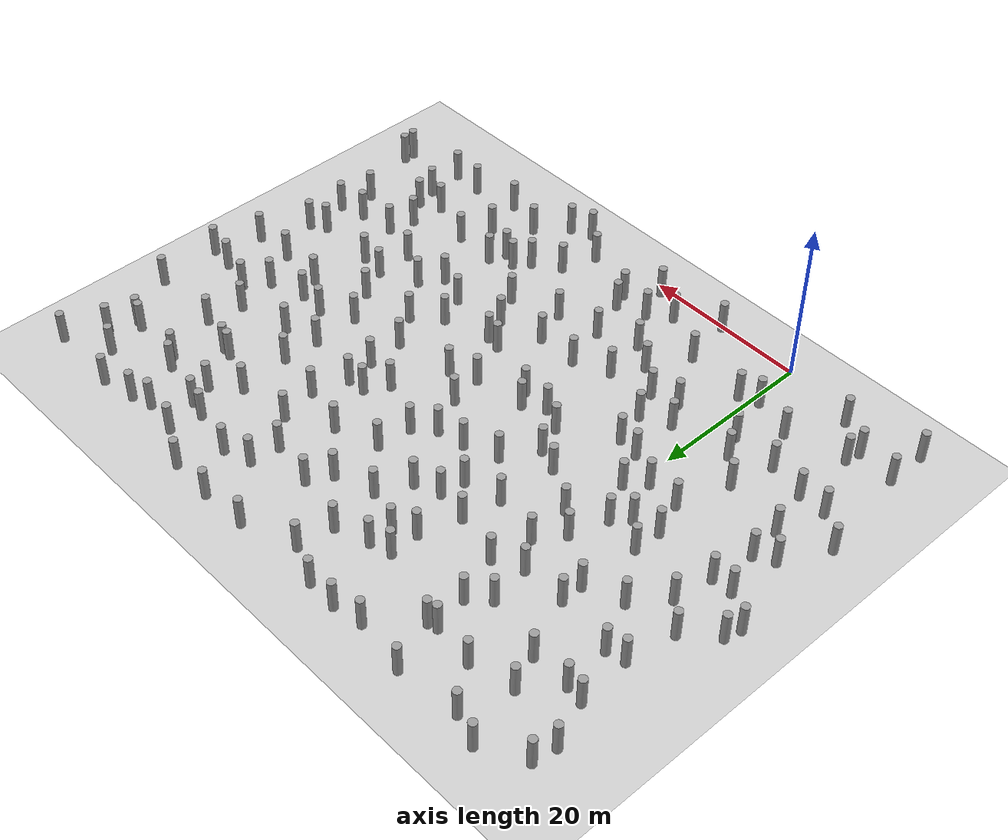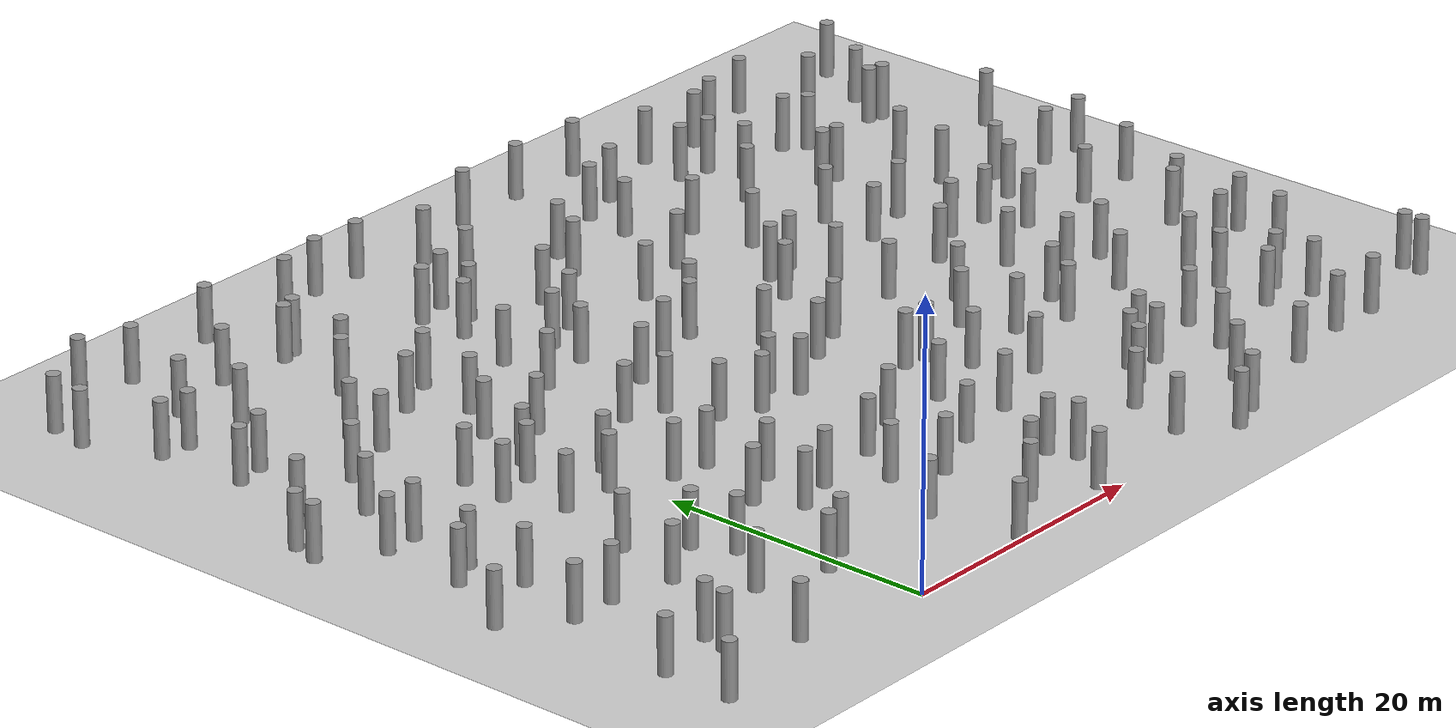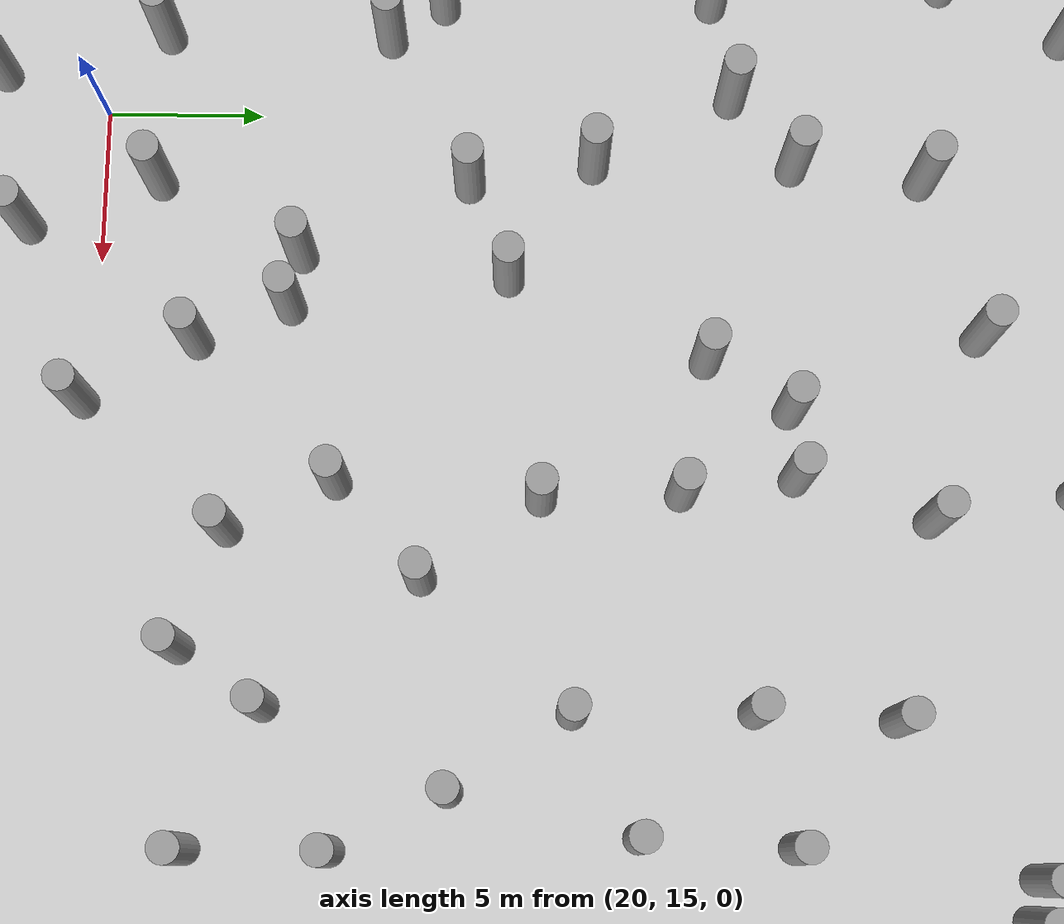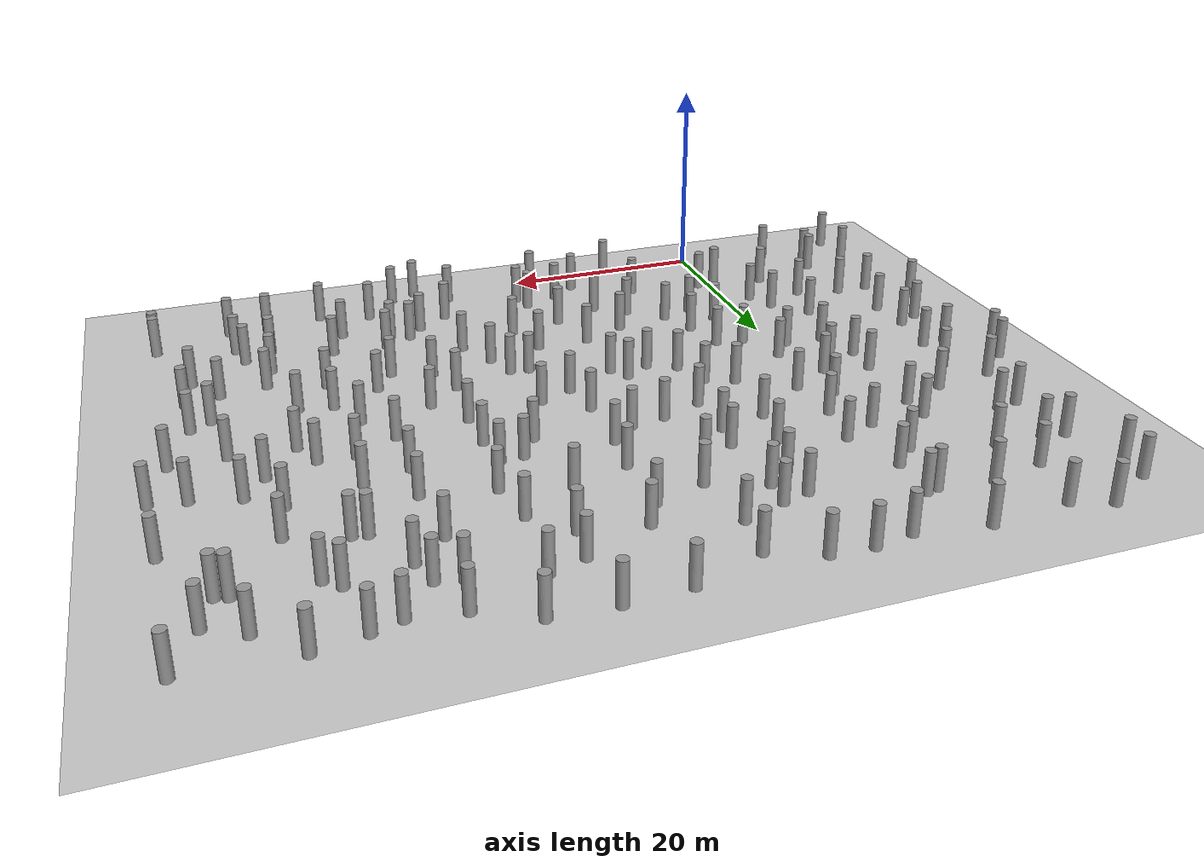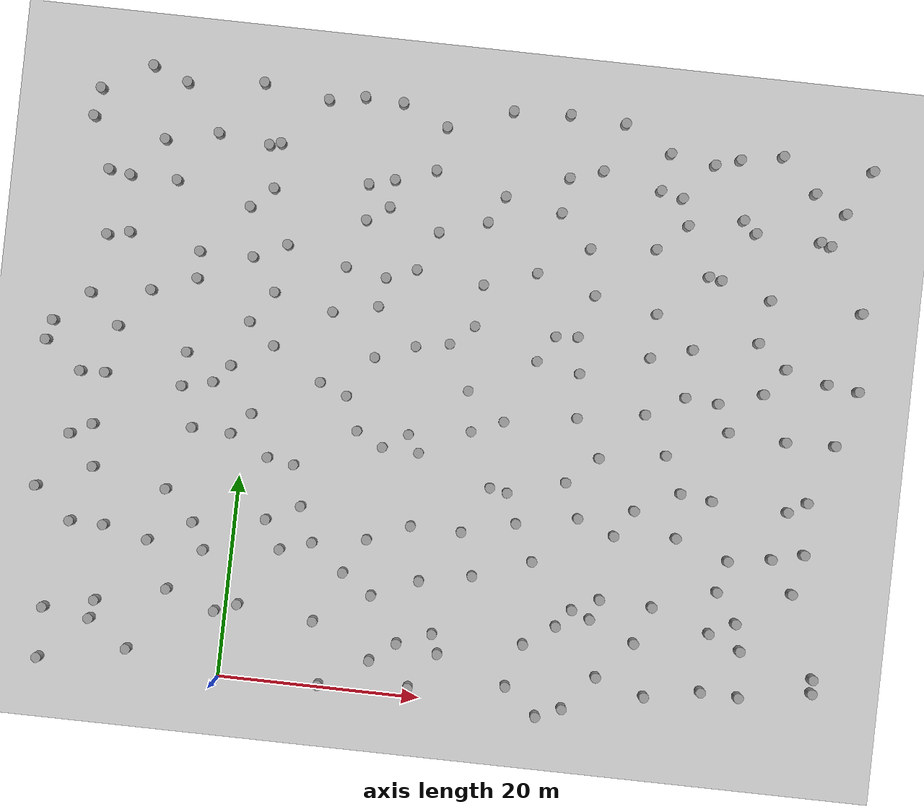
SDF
<sdf version="1.6">
 <world name="default">
  <model name="ground_plane">
   <static>1</static>
   <link name="link">
    <collision name="collision">
     <geometry><plane><normal>0 0 1</normal><size>200 200</size></plane></geometry>
     <surface><friction><ode><mu>100</mu><mu2>50</mu2></ode></friction></surface>
    </collision>
    <visual name="visual">
     <cast_shadows>0</cast_shadows>
     <geometry><plane><normal>0 0 1</normal><size>200 200</size></plane></geometry>
     <material>
      <script><uri>file://media/materials/scripts/gazebo.material</uri><name>Gazebo/Grey</name></script>
     </material>
    </visual>
   </link>
   <pose>0 100 0 0 0 0</pose>
  </model>
  <include>
   <name>tree_-20.3471959496_31.4327695298</name>
   <uri>model://tree</uri>
   <pose>-20.3471959496 31.4327695298 2 0 0 0</pose>
  </include>
  <include>
   <name>tree_-17.8876705549_0.151545028058</name>
   <uri>model://tree</uri>
   <pose>-17.8876705549 0.151545028058 2 0 0 0</pose>
  </include>
  <include>
   <name>tree_-17.8658767701_5.13942806395</name>
   <uri>model://tree</uri>
   <pose>-17.8658767701 5.13942806395 2 0 0 0</pose>
  </include>
  <include>
   <name>tree_-16.1157579756_13.8774870262</name>
   <uri>model://tree</uri>
   <pose>-16.1157579756 13.8774870262 2 0 0 0</pose>
  </include>
  <include>
   <name>tree_-19.8415970105_16.9950917067</name>
   <uri>model://tree</uri>
   <pose>-19.8415970105 16.9950917067 2 0 0 0</pose>
  </include>
  <include>
   <name>tree_-17.0396160009_22.4654612482</name>
   <uri>model://tree</uri>
   <pose>-17.0396160009 22.4654612482 2 0 0 0</pose>
  </include>
  <include>
   <name>tree_-16.644580941_28.7073676182</name>
   <uri>model://tree</uri>
   <pose>-16.644580941 28.7073676182 2 0 0 0</pose>
  </include>
  <include>
   <name>tree_-19.8629767471_33.4054026926</name>
   <uri>model://tree</uri>
   <pose>-19.8629767471 33.4054026926 2 0 0 0</pose>
  </include>
  <include>
   <name>tree_-16.4330911938_36.5138351451</name>
   <uri>model://tree</uri>
   <pose>-16.4330911938 36.5138351451 2 0 0 0</pose>
  </include>
  <include>
   <name>tree_-15.4296647312_42.3822699031</name>
   <uri>model://tree</uri>
   <pose>-15.4296647312 42.3822699031 2 0 0 0</pose>
  </include>
  <include>
   <name>tree_-15.9097445647_48.777591251</name>
   <uri>model://tree</uri>
   <pose>-15.9097445647 48.777591251 2 0 0 0</pose>
  </include>
  <include>
   <name>tree_-17.9476957016_53.8715595915</name>
   <uri>model://tree</uri>
   <pose>-17.9476957016 53.8715595915 2 0 0 0</pose>
  </include>
  <include>
   <name>tree_-17.5202593692_56.6717556606</name>
   <uri>model://tree</uri>
   <pose>-17.5202593692 56.6717556606 2 0 0 0</pose>
  </include>
  <include>
   <name>tree_-13.2073368421_4.51627342997</name>
   <uri>model://tree</uri>
   <pose>-13.2073368421 4.51627342997 2 0 0 0</pose>
  </include>
  <include>
   <name>tree_-12.8541885721_6.35245963202</name>
   <uri>model://tree</uri>
   <pose>-12.8541885721 6.35245963202 2 0 0 0</pose>
  </include>
  <include>
   <name>tree_-12.7759682866_13.8388029261</name>
   <uri>model://tree</uri>
   <pose>-12.7759682866 13.8388029261 2 0 0 0</pose>
  </include>
  <include>
   <name>tree_-14.4063748572_19.4316727285</name>
   <uri>model://tree</uri>
   <pose>-14.4063748572 19.4316727285 2 0 0 0</pose>
  </include>
  <include>
   <name>tree_-14.8747815988_23.6265828174</name>
   <uri>model://tree</uri>
   <pose>-14.8747815988 23.6265828174 2 0 0 0</pose>
  </include>
  <include>
   <name>tree_-14.1860299002_28.8031567093</name>
   <uri>model://tree</uri>
   <pose>-14.1860299002 28.8031567093 2 0 0 0</pose>
  </include>
  <include>
   <name>tree_-13.4098989439_33.5225265349</name>
   <uri>model://tree</uri>
   <pose>-13.4098989439 33.5225265349 2 0 0 0</pose>
  </include>
  <include>
   <name>tree_-10.5228278711_37.3740751108</name>
   <uri>model://tree</uri>
   <pose>-10.5228278711 37.3740751108 2 0 0 0</pose>
  </include>
  <include>
   <name>tree_-13.2317866527_42.8462266209</name>
   <uri>model://tree</uri>
   <pose>-13.2317866527 42.8462266209 2 0 0 0</pose>
  </include>
  <include>
   <name>tree_-13.7787666317_48.4605740414</name>
   <uri>model://tree</uri>
   <pose>-13.7787666317 48.4605740414 2 0 0 0</pose>
  </include>
  <include>
   <name>tree_-10.692437674_52.306377091</name>
   <uri>model://tree</uri>
   <pose>-10.692437674 52.306377091 2 0 0 0</pose>
  </include>
  <include>
   <name>tree_-12.6012917272_59.412078492</name>
   <uri>model://tree</uri>
   <pose>-12.6012917272 59.412078492 2 0 0 0</pose>
  </include>
  <include>
   <name>tree_-9.23712402127_1.91435965161</name>
   <uri>model://tree</uri>
   <pose>-9.23712402127 1.91435965161 2 0 0 0</pose>
  </include>
  <include>
   <name>tree_-5.90660464364_8.19810058255</name>
   <uri>model://tree</uri>
   <pose>-5.90660464364 8.19810058255 2 0 0 0</pose>
  </include>
  <include>
   <name>tree_-8.30884672884_12.8245825963</name>
   <uri>model://tree</uri>
   <pose>-8.30884672884 12.8245825963 2 0 0 0</pose>
  </include>
  <include>
   <name>tree_-7.02002113818_18.0017570577</name>
   <uri>model://tree</uri>
   <pose>-7.02002113818 18.0017570577 2 0 0 0</pose>
  </include>
  <include>
   <name>tree_-5.09516897834_24.2990620615</name>
   <uri>model://tree</uri>
   <pose>-5.09516897834 24.2990620615 2 0 0 0</pose>
  </include>
  <include>
   <name>tree_-6.53499131373_28.2836747178</name>
   <uri>model://tree</uri>
   <pose>-6.53499131373 28.2836747178 2 0 0 0</pose>
  </include>
  <include>
   <name>tree_-6.38214262196_31.6506247322</name>
   <uri>model://tree</uri>
   <pose>-6.38214262196 31.6506247322 2 0 0 0</pose>
  </include>
  <include>
   <name>tree_-6.12115060556_38.9901246406</name>
   <uri>model://tree</uri>
   <pose>-6.12115060556 38.9901246406 2 0 0 0</pose>
  </include>
  <include>
   <name>tree_-6.15139281868_41.6749913735</name>
   <uri>model://tree</uri>
   <pose>-6.15139281868 41.6749913735 2 0 0 0</pose>
  </include>
  <include>
   <name>tree_-9.11470946419_48.4210206559</name>
   <uri>model://tree</uri>
   <pose>-9.11470946419 48.4210206559 2 0 0 0</pose>
  </include>
  <include>
   <name>tree_-5.50173791698_53.4810601696</name>
   <uri>model://tree</uri>
   <pose>-5.50173791698 53.4810601696 2 0 0 0</pose>
  </include>
  <include>
   <name>tree_-9.10223343715_58.1286850846</name>
   <uri>model://tree</uri>
   <pose>-9.10223343715 58.1286850846 2 0 0 0</pose>
  </include>
  <include>
   <name>tree_-0.999761751167_6.53906919878</name>
   <uri>model://tree</uri>
   <pose>-0.999761751167 6.53906919878 2 0 0 0</pose>
  </include>
  <include>
   <name>tree_-2.73955871888_12.3877746234</name>
   <uri>model://tree</uri>
   <pose>-2.73955871888 12.3877746234 2 0 0 0</pose>
  </include>
  <include>
   <name>tree_-4.05473030635_15.0157839178</name>
   <uri>model://tree</uri>
   <pose>-4.05473030635 15.0157839178 2 0 0 0</pose>
  </include>
  <include>
   <name>tree_-1.24517608595_24.1268477064</name>
   <uri>model://tree</uri>
   <pose>-1.24517608595 24.1268477064 2 0 0 0</pose>
  </include>
  <include>
   <name>tree_-3.49705641482_28.9826916395</name>
   <uri>model://tree</uri>
   <pose>-3.49705641482 28.9826916395 2 0 0 0</pose>
  </include>
  <include>
   <name>tree_-1.91549454132_30.7970167888</name>
   <uri>model://tree</uri>
   <pose>-1.91549454132 30.7970167888 2 0 0 0</pose>
  </include>
  <include>
   <name>tree_-0.531272221028_35.2961618468</name>
   <uri>model://tree</uri>
   <pose>-0.531272221028 35.2961618468 2 0 0 0</pose>
  </include>
  <include>
   <name>tree_-0.877197033835_41.6762184001</name>
   <uri>model://tree</uri>
   <pose>-0.877197033835 41.6762184001 2 0 0 0</pose>
  </include>
  <include>
   <name>tree_-1.67726126651_46.5751806154</name>
   <uri>model://tree</uri>
   <pose>-1.67726126651 46.5751806154 2 0 0 0</pose>
  </include>
  <include>
   <name>tree_-0.435100624166_52.840366762</name>
   <uri>model://tree</uri>
   <pose>-0.435100624166 52.840366762 2 0 0 0</pose>
  </include>
  <include>
   <name>tree_-1.54385126471_58.8835263134</name>
   <uri>model://tree</uri>
   <pose>-1.54385126471 58.8835263134 2 0 0 0</pose>
  </include>
  <include>
   <name>tree_1.21419993826_7.43046508359</name>
   <uri>model://tree</uri>
   <pose>1.21419993826 7.43046508359 2 0 0 0</pose>
  </include>
  <include>
   <name>tree_4.78076918053_13.2502703965</name>
   <uri>model://tree</uri>
   <pose>4.78076918053 13.2502703965 2 0 0 0</pose>
  </include>
  <include>
   <name>tree_3.10394785133_16.0528170704</name>
   <uri>model://tree</uri>
   <pose>3.10394785133 16.0528170704 2 0 0 0</pose>
  </include>
  <include>
   <name>tree_2.6295578138_22.1548978713</name>
   <uri>model://tree</uri>
   <pose>2.6295578138 22.1548978713 2 0 0 0</pose>
  </include>
  <include>
   <name>tree_0.612915995992_26.2754635654</name>
   <uri>model://tree</uri>
   <pose>0.612915995992 26.2754635654 2 0 0 0</pose>
  </include>
  <include>
   <name>tree_2.09185081287_33.169004687</name>
   <uri>model://tree</uri>
   <pose>2.09185081287 33.169004687 2 0 0 0</pose>
  </include>
  <include>
   <name>tree_1.61507169177_38.4356333405</name>
   <uri>model://tree</uri>
   <pose>1.61507169177 38.4356333405 2 0 0 0</pose>
  </include>
  <include>
   <name>tree_2.41406867367_43.2321872583</name>
   <uri>model://tree</uri>
   <pose>2.41406867367 43.2321872583 2 0 0 0</pose>
  </include>
  <include>
   <name>tree_0.474805913514_48.62715839</name>
   <uri>model://tree</uri>
   <pose>0.474805913514 48.62715839 2 0 0 0</pose>
  </include>
  <include>
   <name>tree_0.702923395814_53.1377669234</name>
   <uri>model://tree</uri>
   <pose>0.702923395814 53.1377669234 2 0 0 0</pose>
  </include>
  <include>
   <name>tree_4.95403562581_57.8916987943</name>
   <uri>model://tree</uri>
   <pose>4.95403562581 57.8916987943 2 0 0 0</pose>
  </include>
  <include>
   <name>tree_9.95781373253_0.361493275019</name>
   <uri>model://tree</uri>
   <pose>9.95781373253 0.361493275019 2 0 0 0</pose>
  </include>
  <include>
   <name>tree_8.78549782618_6.55569088804</name>
   <uri>model://tree</uri>
   <pose>8.78549782618 6.55569088804 2 0 0 0</pose>
  </include>
  <include>
   <name>tree_7.89495662563_14.2560323485</name>
   <uri>model://tree</uri>
   <pose>7.89495662563 14.2560323485 2 0 0 0</pose>
  </include>
  <include>
   <name>tree_6.40973689637_17.7028523851</name>
   <uri>model://tree</uri>
   <pose>6.40973689637 17.7028523851 2 0 0 0</pose>
  </include>
  <include>
   <name>tree_5.28348684064_21.7044331893</name>
   <uri>model://tree</uri>
   <pose>5.28348684064 21.7044331893 2 0 0 0</pose>
  </include>
  <include>
   <name>tree_9.7593053844_29.0151550906</name>
   <uri>model://tree</uri>
   <pose>9.7593053844 29.0151550906 2 0 0 0</pose>
  </include>
  <include>
   <name>tree_7.03472331144_30.0869477431</name>
   <uri>model://tree</uri>
   <pose>7.03472331144 30.0869477431 2 0 0 0</pose>
  </include>
  <include>
   <name>tree_7.5276890991_37.0967775424</name>
   <uri>model://tree</uri>
   <pose>7.5276890991 37.0967775424 2 0 0 0</pose>
  </include>
  <include>
   <name>tree_8.37733114277_41.6642282972</name>
   <uri>model://tree</uri>
   <pose>8.37733114277 41.6642282972 2 0 0 0</pose>
  </include>
  <include>
   <name>tree_9.85879030235_46.4765096122</name>
   <uri>model://tree</uri>
   <pose>9.85879030235 46.4765096122 2 0 0 0</pose>
  </include>
  <include>
   <name>tree_9.73030126142_50.0341787613</name>
   <uri>model://tree</uri>
   <pose>9.73030126142 50.0341787613 2 0 0 0</pose>
  </include>
  <include>
   <name>tree_8.50716814955_58.5361110668</name>
   <uri>model://tree</uri>
   <pose>8.50716814955 58.5361110668 2 0 0 0</pose>
  </include>
  <include>
   <name>tree_14.7329609649_3.28943206971</name>
   <uri>model://tree</uri>
   <pose>14.7329609649 3.28943206971 2 0 0 0</pose>
  </include>
  <include>
   <name>tree_14.2391757212_9.68748955375</name>
   <uri>model://tree</uri>
   <pose>14.2391757212 9.68748955375 2 0 0 0</pose>
  </include>
  <include>
   <name>tree_11.2313291689_11.6405630384</name>
   <uri>model://tree</uri>
   <pose>11.2313291689 11.6405630384 2 0 0 0</pose>
  </include>
  <include>
   <name>tree_13.2306232495_15.1252835363</name>
   <uri>model://tree</uri>
   <pose>13.2306232495 15.1252835363 2 0 0 0</pose>
  </include>
  <include>
   <name>tree_13.8076879308_24.3558616954</name>
   <uri>model://tree</uri>
   <pose>13.8076879308 24.3558616954 2 0 0 0</pose>
  </include>
  <include>
   <name>tree_11.1435587576_25.683518011</name>
   <uri>model://tree</uri>
   <pose>11.1435587576 25.683518011 2 0 0 0</pose>
  </include>
  <include>
   <name>tree_12.1224444261_33.088834586</name>
   <uri>model://tree</uri>
   <pose>12.1224444261 33.088834586 2 0 0 0</pose>
  </include>
  <include>
   <name>tree_11.9546528767_38.1325533578</name>
   <uri>model://tree</uri>
   <pose>11.9546528767 38.1325533578 2 0 0 0</pose>
  </include>
  <include>
   <name>tree_12.4022859398_41.0097253735</name>
   <uri>model://tree</uri>
   <pose>12.4022859398 41.0097253735 2 0 0 0</pose>
  </include>
  <include>
   <name>tree_12.0423983521_48.0032231868</name>
   <uri>model://tree</uri>
   <pose>12.0423983521 48.0032231868 2 0 0 0</pose>
  </include>
  <include>
   <name>tree_12.2760102077_50.7298230884</name>
   <uri>model://tree</uri>
   <pose>12.2760102077 50.7298230884 2 0 0 0</pose>
  </include>
  <include>
   <name>tree_12.3035257343_58.3575648319</name>
   <uri>model://tree</uri>
   <pose>12.3035257343 58.3575648319 2 0 0 0</pose>
  </include>
  <include>
   <name>tree_18.8108210003_1.05491483125</name>
   <uri>model://tree</uri>
   <pose>18.8108210003 1.05491483125 2 0 0 0</pose>
  </include>
  <include>
   <name>tree_17.2305027523_5.24937710803</name>
   <uri>model://tree</uri>
   <pose>17.2305027523 5.24937710803 2 0 0 0</pose>
  </include>
  <include>
   <name>tree_18.7928697933_11.6104925142</name>
   <uri>model://tree</uri>
   <pose>18.7928697933 11.6104925142 2 0 0 0</pose>
  </include>
  <include>
   <name>tree_17.4082413855_16.9188141027</name>
   <uri>model://tree</uri>
   <pose>17.4082413855 16.9188141027 2 0 0 0</pose>
  </include>
  <include>
   <name>tree_17.4305341429_24.1746424024</name>
   <uri>model://tree</uri>
   <pose>17.4305341429 24.1746424024 2 0 0 0</pose>
  </include>
  <include>
   <name>tree_16.2453948462_25.8747812358</name>
   <uri>model://tree</uri>
   <pose>16.2453948462 25.8747812358 2 0 0 0</pose>
  </include>
  <include>
   <name>tree_16.040401373_34.58649215</name>
   <uri>model://tree</uri>
   <pose>16.040401373 34.58649215 2 0 0 0</pose>
  </include>
  <include>
   <name>tree_19.3514869284_35.1983246697</name>
   <uri>model://tree</uri>
   <pose>19.3514869284 35.1983246697 2 0 0 0</pose>
  </include>
  <include>
   <name>tree_15.3625407874_42.1382336314</name>
   <uri>model://tree</uri>
   <pose>15.3625407874 42.1382336314 2 0 0 0</pose>
  </include>
  <include>
   <name>tree_17.1281998393_46.0429593903</name>
   <uri>model://tree</uri>
   <pose>17.1281998393 46.0429593903 2 0 0 0</pose>
  </include>
  <include>
   <name>tree_16.2513004429_52.0863496319</name>
   <uri>model://tree</uri>
   <pose>16.2513004429 52.0863496319 2 0 0 0</pose>
  </include>
  <include>
   <name>tree_16.8393502672_56.4312100531</name>
   <uri>model://tree</uri>
   <pose>16.8393502672 56.4312100531 2 0 0 0</pose>
  </include>
  <include>
   <name>tree_21.3529550006_4.65939508553</name>
   <uri>model://tree</uri>
   <pose>21.3529550006 4.65939508553 2 0 0 0</pose>
  </include>
  <include>
   <name>tree_20.6302585493_6.556247243</name>
   <uri>model://tree</uri>
   <pose>20.6302585493 6.556247243 2 0 0 0</pose>
  </include>
  <include>
   <name>tree_23.969394483_12.6562244136</name>
   <uri>model://tree</uri>
   <pose>23.969394483 12.6562244136 2 0 0 0</pose>
  </include>
  <include>
   <name>tree_22.4404401047_16.8578541856</name>
   <uri>model://tree</uri>
   <pose>22.4404401047 16.8578541856 2 0 0 0</pose>
  </include>
  <include>
   <name>tree_24.8033804881_21.4933004124</name>
   <uri>model://tree</uri>
   <pose>24.8033804881 21.4933004124 2 0 0 0</pose>
  </include>
  <include>
   <name>tree_22.3663571721_26.8165670661</name>
   <uri>model://tree</uri>
   <pose>22.3663571721 26.8165670661 2 0 0 0</pose>
  </include>
  <include>
   <name>tree_21.6614622941_30.7861452054</name>
   <uri>model://tree</uri>
   <pose>21.6614622941 30.7861452054 2 0 0 0</pose>
  </include>
  <include>
   <name>tree_21.6334133064_37.1945235972</name>
   <uri>model://tree</uri>
   <pose>21.6334133064 37.1945235972 2 0 0 0</pose>
  </include>
  <include>
   <name>tree_22.0503312983_41.3432754541</name>
   <uri>model://tree</uri>
   <pose>22.0503312983 41.3432754541 2 0 0 0</pose>
  </include>
  <include>
   <name>tree_21.8397674164_47.5304358181</name>
   <uri>model://tree</uri>
   <pose>21.8397674164 47.5304358181 2 0 0 0</pose>
  </include>
  <include>
   <name>tree_23.3258048821_50.2344477104</name>
   <uri>model://tree</uri>
   <pose>23.3258048821 50.2344477104 2 0 0 0</pose>
  </include>
  <include>
   <name>tree_23.2174539465_58.6954201621</name>
   <uri>model://tree</uri>
   <pose>23.2174539465 58.6954201621 2 0 0 0</pose>
  </include>
  <include>
   <name>tree_28.3607544817_2.19292285919</name>
   <uri>model://tree</uri>
   <pose>28.3607544817 2.19292285919 2 0 0 0</pose>
  </include>
  <include>
   <name>tree_29.6602417371_6.48811783542</name>
   <uri>model://tree</uri>
   <pose>29.6602417371 6.48811783542 2 0 0 0</pose>
  </include>
  <include>
   <name>tree_29.7017345565_14.6875576766</name>
   <uri>model://tree</uri>
   <pose>29.7017345565 14.6875576766 2 0 0 0</pose>
  </include>
  <include>
   <name>tree_27.7187717576_18.2521476631</name>
   <uri>model://tree</uri>
   <pose>27.7187717576 18.2521476631 2 0 0 0</pose>
  </include>
  <include>
   <name>tree_26.5383841595_21.1864757655</name>
   <uri>model://tree</uri>
   <pose>26.5383841595 21.1864757655 2 0 0 0</pose>
  </include>
  <include>
   <name>tree_25.4854156838_28.1241307212</name>
   <uri>model://tree</uri>
   <pose>25.4854156838 28.1241307212 2 0 0 0</pose>
  </include>
  <include>
   <name>tree_28.1014208149_34.4067036226</name>
   <uri>model://tree</uri>
   <pose>28.1014208149 34.4067036226 2 0 0 0</pose>
  </include>
  <include>
   <name>tree_29.697610151_37.0424321133</name>
   <uri>model://tree</uri>
   <pose>29.697610151 37.0424321133 2 0 0 0</pose>
  </include>
  <include>
   <name>tree_27.2303343671_43.0635275129</name>
   <uri>model://tree</uri>
   <pose>27.2303343671 43.0635275129 2 0 0 0</pose>
  </include>
  <include>
   <name>tree_28.9862209097_49.229038151</name>
   <uri>model://tree</uri>
   <pose>28.9862209097 49.229038151 2 0 0 0</pose>
  </include>
  <include>
   <name>tree_29.4016294292_52.7413518911</name>
   <uri>model://tree</uri>
   <pose>29.4016294292 52.7413518911 2 0 0 0</pose>
  </include>
  <include>
   <name>tree_28.8530329419_58.974716975</name>
   <uri>model://tree</uri>
   <pose>28.8530329419 58.974716975 2 0 0 0</pose>
  </include>
  <include>
   <name>tree_31.6172894626_-0.449995815039</name>
   <uri>model://tree</uri>
   <pose>31.6172894626 -0.449995815039 2 0 0 0</pose>
  </include>
  <include>
   <name>tree_34.1321183921_0.575389291533</name>
   <uri>model://tree</uri>
   <pose>34.1321183921 0.575389291533 2 0 0 0</pose>
  </include>
  <include>
   <name>tree_32.7009302832_8.59783084837</name>
   <uri>model://tree</uri>
   <pose>32.7009302832 8.59783084837 2 0 0 0</pose>
  </include>
  <include>
   <name>tree_34.1079052529_10.3682582669</name>
   <uri>model://tree</uri>
   <pose>34.1079052529 10.3682582669 2 0 0 0</pose>
  </include>
  <include>
   <name>tree_33.7572643501_19.4048977081</name>
   <uri>model://tree</uri>
   <pose>33.7572643501 19.4048977081 2 0 0 0</pose>
  </include>
  <include>
   <name>tree_32.1951607422_22.804138891</name>
   <uri>model://tree</uri>
   <pose>32.1951607422 22.804138891 2 0 0 0</pose>
  </include>
  <include>
   <name>tree_32.6288402652_29.2562413708</name>
   <uri>model://tree</uri>
   <pose>32.6288402652 29.2562413708 2 0 0 0</pose>
  </include>
  <include>
   <name>tree_32.4043441001_33.6453432142</name>
   <uri>model://tree</uri>
   <pose>32.4043441001 33.6453432142 2 0 0 0</pose>
  </include>
  <include>
   <name>tree_31.8676305517_37.2278466378</name>
   <uri>model://tree</uri>
   <pose>31.8676305517 37.2278466378 2 0 0 0</pose>
  </include>
  <include>
   <name>tree_33.1277701623_41.4672431299</name>
   <uri>model://tree</uri>
   <pose>33.1277701623 41.4672431299 2 0 0 0</pose>
  </include>
  <include>
   <name>tree_32.1901257417_46.000333524</name>
   <uri>model://tree</uri>
   <pose>32.1901257417 46.000333524 2 0 0 0</pose>
  </include>
  <include>
   <name>tree_32.6503332434_53.7906269226</name>
   <uri>model://tree</uri>
   <pose>32.6503332434 53.7906269226 2 0 0 0</pose>
  </include>
  <include>
   <name>tree_34.3570682258_58.6580026576</name>
   <uri>model://tree</uri>
   <pose>34.3570682258 58.6580026576 2 0 0 0</pose>
  </include>
  <include>
   <name>tree_37.1552963082_4.03060731619</name>
   <uri>model://tree</uri>
   <pose>37.1552963082 4.03060731619 2 0 0 0</pose>
  </include>
  <include>
   <name>tree_35.9570091282_9.63486003291</name>
   <uri>model://tree</uri>
   <pose>35.9570091282 9.63486003291 2 0 0 0</pose>
  </include>
  <include>
   <name>tree_36.7323919757_11.6796988061</name>
   <uri>model://tree</uri>
   <pose>36.7323919757 11.6796988061 2 0 0 0</pose>
  </include>
  <include>
   <name>tree_37.4668088337_18.0633645429</name>
   <uri>model://tree</uri>
   <pose>37.4668088337 18.0633645429 2 0 0 0</pose>
  </include>
  <include>
   <name>tree_39.2162071725_20.7513467419</name>
   <uri>model://tree</uri>
   <pose>39.2162071725 20.7513467419 2 0 0 0</pose>
  </include>
  <include>
   <name>tree_35.2094093266_25.5438034795</name>
   <uri>model://tree</uri>
   <pose>35.2094093266 25.5438034795 2 0 0 0</pose>
  </include>
  <include>
   <name>tree_39.3007162952_30.3060099415</name>
   <uri>model://tree</uri>
   <pose>39.3007162952 30.3060099415 2 0 0 0</pose>
  </include>
  <include>
   <name>tree_39.1874538286_35.9361720749</name>
   <uri>model://tree</uri>
   <pose>39.1874538286 35.9361720749 2 0 0 0</pose>
  </include>
  <include>
   <name>tree_39.3856627205_40.3056388502</name>
   <uri>model://tree</uri>
   <pose>39.3856627205 40.3056388502 2 0 0 0</pose>
  </include>
  <include>
   <name>tree_38.6781192152_46.6597185975</name>
   <uri>model://tree</uri>
   <pose>38.6781192152 46.6597185975 2 0 0 0</pose>
  </include>
  <include>
   <name>tree_38.5039167986_52.4619332198</name>
   <uri>model://tree</uri>
   <pose>38.5039167986 52.4619332198 2 0 0 0</pose>
  </include>
  <include>
   <name>tree_39.093376815_56.210250903</name>
   <uri>model://tree</uri>
   <pose>39.093376815 56.210250903 2 0 0 0</pose>
  </include>
  <include>
   <name>tree_42.0675926511_2.6129130746</name>
   <uri>model://tree</uri>
   <pose>42.0675926511 2.6129130746 2 0 0 0</pose>
  </include>
  <include>
   <name>tree_40.5309866936_7.73847896754</name>
   <uri>model://tree</uri>
   <pose>40.5309866936 7.73847896754 2 0 0 0</pose>
  </include>
  <include>
   <name>tree_41.9528096087_11.4816805017</name>
   <uri>model://tree</uri>
   <pose>41.9528096087 11.4816805017 2 0 0 0</pose>
  </include>
  <include>
   <name>tree_43.6056085789_18.4947223778</name>
   <uri>model://tree</uri>
   <pose>43.6056085789 18.4947223778 2 0 0 0</pose>
  </include>
  <include>
   <name>tree_43.5963106063_22.9317394951</name>
   <uri>model://tree</uri>
   <pose>43.5963106063 22.9317394951 2 0 0 0</pose>
  </include>
  <include>
   <name>tree_41.7530997633_26.5092526053</name>
   <uri>model://tree</uri>
   <pose>41.7530997633 26.5092526053 2 0 0 0</pose>
  </include>
  <include>
   <name>tree_43.0576982528_32.4013275607</name>
   <uri>model://tree</uri>
   <pose>43.0576982528 32.4013275607 2 0 0 0</pose>
  </include>
  <include>
   <name>tree_43.2863202703_37.1653887208</name>
   <uri>model://tree</uri>
   <pose>43.2863202703 37.1653887208 2 0 0 0</pose>
  </include>
  <include>
   <name>tree_44.1093454652_44.515457945</name>
   <uri>model://tree</uri>
   <pose>44.1093454652 44.515457945 2 0 0 0</pose>
  </include>
  <include>
   <name>tree_41.5547091318_49.324647633</name>
   <uri>model://tree</uri>
   <pose>41.5547091318 49.324647633 2 0 0 0</pose>
  </include>
  <include>
   <name>tree_40.7115902764_51.9299573991</name>
   <uri>model://tree</uri>
   <pose>40.7115902764 51.9299573991 2 0 0 0</pose>
  </include>
  <include>
   <name>tree_43.5431573095_55.5485112935</name>
   <uri>model://tree</uri>
   <pose>43.5431573095 55.5485112935 2 0 0 0</pose>
  </include>
  <include>
   <name>tree_47.5877229047_3.67002826074</name>
   <uri>model://tree</uri>
   <pose>47.5877229047 3.67002826074 2 0 0 0</pose>
  </include>
  <include>
   <name>tree_47.82148757_9.48742744709</name>
   <uri>model://tree</uri>
   <pose>47.82148757 9.48742744709 2 0 0 0</pose>
  </include>
  <include>
   <name>tree_48.1789448326_13.6488235967</name>
   <uri>model://tree</uri>
   <pose>48.1789448326 13.6488235967 2 0 0 0</pose>
  </include>
  <include>
   <name>tree_48.9212910431_16.7951071141</name>
   <uri>model://tree</uri>
   <pose>48.9212910431 16.7951071141 2 0 0 0</pose>
  </include>
  <include>
   <name>tree_46.7379909073_22.5104381734</name>
   <uri>model://tree</uri>
   <pose>46.7379909073 22.5104381734 2 0 0 0</pose>
  </include>
  <include>
   <name>tree_47.6811063796_29.4289403822</name>
   <uri>model://tree</uri>
   <pose>47.6811063796 29.4289403822 2 0 0 0</pose>
  </include>
  <include>
   <name>tree_46.3534046596_32.1406798297</name>
   <uri>model://tree</uri>
   <pose>46.3534046596 32.1406798297 2 0 0 0</pose>
  </include>
  <include>
   <name>tree_49.694501574_38.5212963124</name>
   <uri>model://tree</uri>
   <pose>49.694501574 38.5212963124 2 0 0 0</pose>
  </include>
  <include>
   <name>tree_45.3701883144_44.2802589901</name>
   <uri>model://tree</uri>
   <pose>45.3701883144 44.2802589901 2 0 0 0</pose>
  </include>
  <include>
   <name>tree_48.2808895214_49.2521922774</name>
   <uri>model://tree</uri>
   <pose>48.2808895214 49.2521922774 2 0 0 0</pose>
  </include>
  <include>
   <name>tree_46.9453425535_50.4166656288</name>
   <uri>model://tree</uri>
   <pose>46.9453425535 50.4166656288 2 0 0 0</pose>
  </include>
  <include>
   <name>tree_46.0002451993_56.3115426271</name>
   <uri>model://tree</uri>
   <pose>46.0002451993 56.3115426271 2 0 0 0</pose>
  </include>
  <include>
   <name>tree_51.3481778469_3.53475237441</name>
   <uri>model://tree</uri>
   <pose>51.3481778469 3.53475237441 2 0 0 0</pose>
  </include>
  <include>
   <name>tree_51.0453733647_8.08831605202</name>
   <uri>model://tree</uri>
   <pose>51.0453733647 8.08831605202 2 0 0 0</pose>
  </include>
  <include>
   <name>tree_50.3546978938_10.734994141</name>
   <uri>model://tree</uri>
   <pose>50.3546978938 10.734994141 2 0 0 0</pose>
  </include>
  <include>
   <name>tree_53.2110777335_17.4177313007</name>
   <uri>model://tree</uri>
   <pose>53.2110777335 17.4177313007 2 0 0 0</pose>
  </include>
  <include>
   <name>tree_54.2902737724_22.2166029803</name>
   <uri>model://tree</uri>
   <pose>54.2902737724 22.2166029803 2 0 0 0</pose>
  </include>
  <include>
   <name>tree_53.3991136752_29.0590047637</name>
   <uri>model://tree</uri>
   <pose>53.3991136752 29.0590047637 2 0 0 0</pose>
  </include>
  <include>
   <name>tree_50.7068881074_33.5326119075</name>
   <uri>model://tree</uri>
   <pose>50.7068881074 33.5326119075 2 0 0 0</pose>
  </include>
  <include>
   <name>tree_52.6633035283_36.2156182017</name>
   <uri>model://tree</uri>
   <pose>52.6633035283 36.2156182017 2 0 0 0</pose>
  </include>
  <include>
   <name>tree_50.4116809733_42.8289800233</name>
   <uri>model://tree</uri>
   <pose>50.4116809733 42.8289800233 2 0 0 0</pose>
  </include>
  <include>
   <name>tree_54.719161135_49.0807272598</name>
   <uri>model://tree</uri>
   <pose>54.719161135 49.0807272598 2 0 0 0</pose>
  </include>
  <include>
   <name>tree_53.7260228998_53.7906271908</name>
   <uri>model://tree</uri>
   <pose>53.7260228998 53.7906271908 2 0 0 0</pose>
  </include>
  <include>
   <name>tree_50.1690434154_57.1013145409</name>
   <uri>model://tree</uri>
   <pose>50.1690434154 57.1013145409 2 0 0 0</pose>
  </include>
  <include>
   <name>tree_58.5263486016_4.69323666771</name>
   <uri>model://tree</uri>
   <pose>58.5263486016 4.69323666771 2 0 0 0</pose>
  </include>
  <include>
   <name>tree_58.489280811_6.06721873699</name>
   <uri>model://tree</uri>
   <pose>58.489280811 6.06721873699 2 0 0 0</pose>
  </include>
  <include>
   <name>tree_55.5606444711_14.2259032674</name>
   <uri>model://tree</uri>
   <pose>55.5606444711 14.2259032674 2 0 0 0</pose>
  </include>
  <include>
   <name>tree_56.3789713786_18.1969734797</name>
   <uri>model://tree</uri>
   <pose>56.3789713786 18.1969734797 2 0 0 0</pose>
  </include>
  <include>
   <name>tree_56.1434754027_23.3188888341</name>
   <uri>model://tree</uri>
   <pose>56.1434754027 23.3188888341 2 0 0 0</pose>
  </include>
  <include>
   <name>tree_58.2697545567_29.218503518</name>
   <uri>model://tree</uri>
   <pose>58.2697545567 29.218503518 2 0 0 0</pose>
  </include>
  <include>
   <name>tree_59.9838889194_34.7591630837</name>
   <uri>model://tree</uri>
   <pose>59.9838889194 34.7591630837 2 0 0 0</pose>
  </include>
  <include>
   <name>tree_56.8613302443_35.1747306806</name>
   <uri>model://tree</uri>
   <pose>56.8613302443 35.1747306806 2 0 0 0</pose>
  </include>
  <include>
   <name>tree_59.5231859529_42.4858022902</name>
   <uri>model://tree</uri>
   <pose>59.5231859529 42.4858022902 2 0 0 0</pose>
  </include>
  <include>
   <name>tree_55.760943163_48.7697524249</name>
   <uri>model://tree</uri>
   <pose>55.760943163 48.7697524249 2 0 0 0</pose>
  </include>
  <include>
   <name>tree_56.9079497025_52.0973178023</name>
   <uri>model://tree</uri>
   <pose>56.9079497025 52.0973178023 2 0 0 0</pose>
  </include>
  <include>
   <name>tree_59.1500044891_56.568915409</name>
   <uri>model://tree</uri>
   <pose>59.1500044891 56.568915409 2 0 0 0</pose>
  </include>
 </world>
</sdf>
